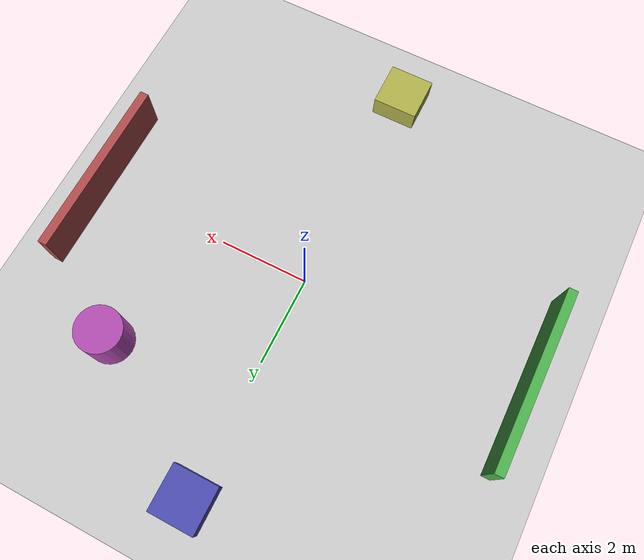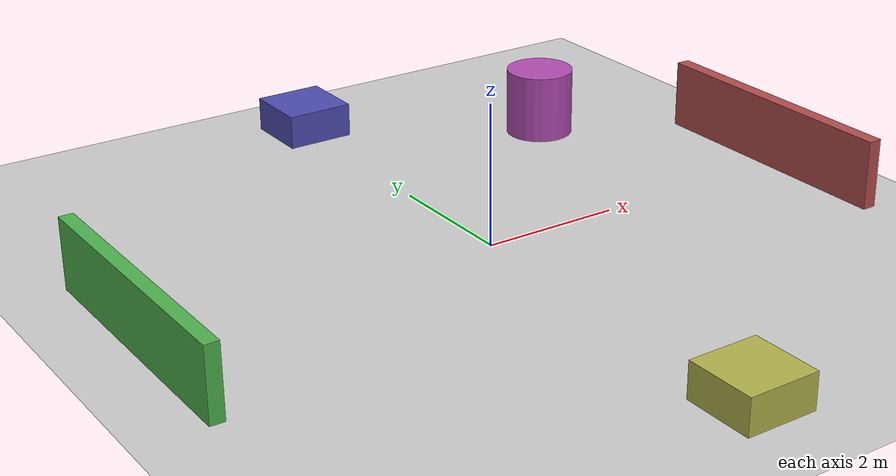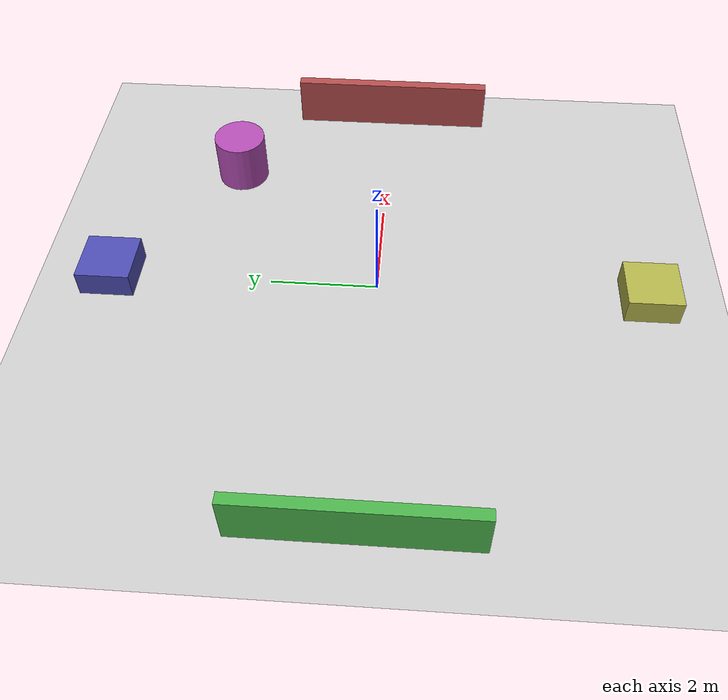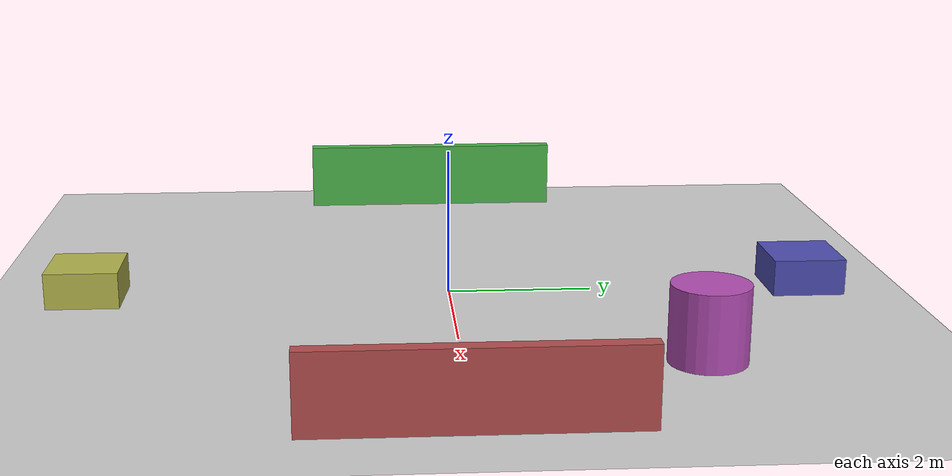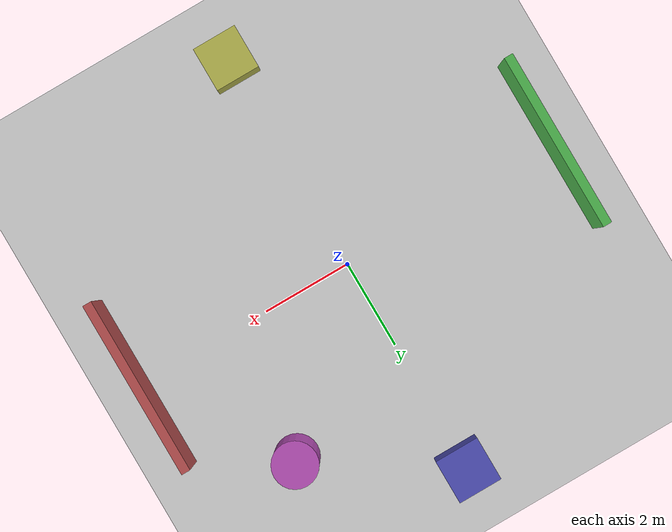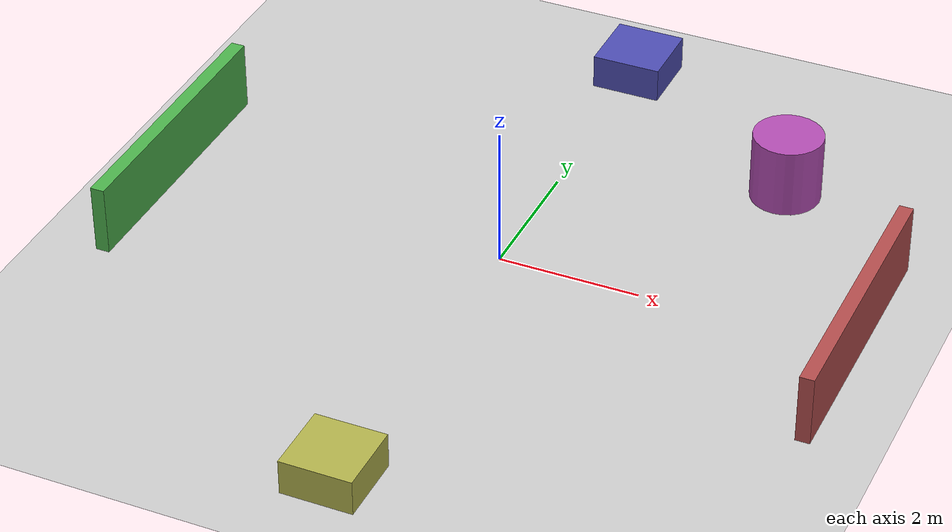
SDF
<?xml version="1.0" ?>
<sdf version="1.8">
  <world name="empty_world">
    <!-- Physics settings -->
    <physics name="1ms" type="ignored">
      <max_step_size>0.003</max_step_size>
      <real_time_factor>1.0</real_time_factor>
      <real_time_update_rate>1000</real_time_update_rate>
    </physics>

    <!-- Required Gazebo plugins -->
    <plugin filename="ignition-gazebo-physics-system" name="ignition::gazebo::systems::Physics"/>
    <plugin filename="ignition-gazebo-user-commands-system" name="ignition::gazebo::systems::UserCommands"/>
    <plugin filename="ignition-gazebo-scene-broadcaster-system" name="ignition::gazebo::systems::SceneBroadcaster"/>
    <plugin filename="ignition-gazebo-contact-system" name="ignition::gazebo::systems::Contact"/>

    <!-- Lighting -->
    <light type="directional" name="sun">
      <cast_shadows>true</cast_shadows>
      <pose>0 0 10 0 0 0</pose>
      <diffuse>0.8 0.8 0.8 1</diffuse>
      <specular>0.2 0.2 0.2 1</specular>
      <attenuation>
        <range>1000</range>
        <constant>0.9</constant>
        <linear>0.01</linear>
        <quadratic>0.001</quadratic>
      </attenuation>
      <direction>-0.5 0.1 -0.9</direction>
    </light>

    <!-- Ground plane -->
    <model name="ground_plane">
      <static>true</static>
      <link name="link">
        <collision name="collision">
          <geometry>
            <plane>
              <normal>0 0 1</normal>
              <size>100 100</size>
            </plane>
          </geometry>
        </collision>
        <visual name="visual">
          <geometry>
            <plane>
              <normal>0 0 1</normal>
              <size>100 100</size>
            </plane>
          </geometry>
          <material>
            <ambient>0.8 0.8 0.8 1</ambient>
            <diffuse>0.8 0.8 0.8 1</diffuse>
            <specular>0.8 0.8 0.8 1</specular>
          </material>
        </visual>
      </link>
    </model>

    <!-- Simple obstacles for testing -->
    <!-- Wall 1 -->
    <model name="wall_1">
      <static>true</static>
      <pose>5 0 0.5 0 0 0</pose>
      <link name="link">
        <collision name="collision">
          <geometry>
            <box>
              <size>0.2 4 1</size>
            </box>
          </geometry>
        </collision>
        <visual name="visual">
          <geometry>
            <box>
              <size>0.2 4 1</size>
            </box>
          </geometry>
          <material>
            <ambient>0.7 0.3 0.3 1</ambient>
            <diffuse>0.7 0.3 0.3 1</diffuse>
          </material>
        </visual>
      </link>
    </model>

    <!-- Wall 2 -->
    <model name="wall_2">
      <static>true</static>
      <pose>-5 0 0.5 0 0 0</pose>
      <link name="link">
        <collision name="collision">
          <geometry>
            <box>
              <size>0.2 4 1</size>
            </box>
          </geometry>
        </collision>
        <visual name="visual">
          <geometry>
            <box>
              <size>0.2 4 1</size>
            </box>
          </geometry>
          <material>
            <ambient>0.3 0.7 0.3 1</ambient>
            <diffuse>0.3 0.7 0.3 1</diffuse>
          </material>
        </visual>
      </link>
    </model>

    <!-- Box obstacle 1 -->
    <model name="box_1">
      <static>true</static>
      <pose>0 5 0.25 0 0 0</pose>
      <link name="link">
        <collision name="collision">
          <geometry>
            <box>
              <size>1 1 0.5</size>
            </box>
          </geometry>
        </collision>
        <visual name="visual">
          <geometry>
            <box>
              <size>1 1 0.5</size>
            </box>
          </geometry>
          <material>
            <ambient>0.3 0.3 0.7 1</ambient>
            <diffuse>0.3 0.3 0.7 1</diffuse>
          </material>
        </visual>
      </link>
    </model>

    <!-- Box obstacle 2 -->
    <model name="box_2">
      <static>true</static>
      <pose>0 -5 0.25 0 0 0</pose>
      <link name="link">
        <collision name="collision">
          <geometry>
            <box>
              <size>1 1 0.5</size>
            </box>
          </geometry>
        </collision>
        <visual name="visual">
          <geometry>
            <box>
              <size>1 1 0.5</size>
            </box>
          </geometry>
          <material>
            <ambient>0.7 0.7 0.3 1</ambient>
            <diffuse>0.7 0.7 0.3 1</diffuse>
          </material>
        </visual>
      </link>
    </model>

    <!-- Cylinder obstacle -->
    <model name="cylinder_1">
      <static>true</static>
      <pose>3 3 0.5 0 0 0</pose>
      <link name="link">
        <collision name="collision">
          <geometry>
            <cylinder>
              <radius>0.5</radius>
              <length>1.0</length>
            </cylinder>
          </geometry>
        </collision>
        <visual name="visual">
          <geometry>
            <cylinder>
              <radius>0.5</radius>
              <length>1.0</length>
            </cylinder>
          </geometry>
          <material>
            <ambient>0.7 0.3 0.7 1</ambient>
            <diffuse>0.7 0.3 0.7 1</diffuse>
          </material>
        </visual>
      </link>
    </model>

  </world>
</sdf>
